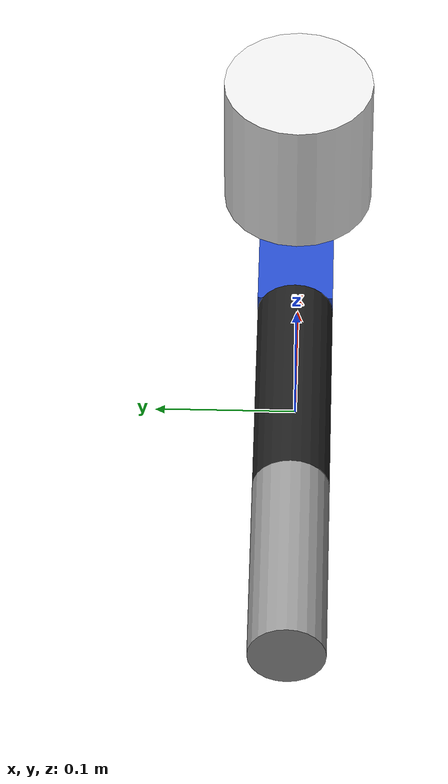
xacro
<?xml version="1.0"?>
<robot name="labrob" xmlns:xacro="http://www.ros.org/wiki/xacro">
  <!-- Included URDF/XACRO Files -->
  <xacro:include filename="$(find priovr_description)/urdf/materials.urdf.xacro" />

  <!-- PROPERTY LIST -->
  <!--All units in m-kg-s-radians unit system -->
  <property name="M_PI" value="3.1415926535897931" />
  <property name="M_PI_2" value="1.570796327" />
  <property name="DEG_TO_RAD" value="0.017453293" />

  <!-- Main Body-base -->
  <property name="depth" value="0.05" />
  <property name="hips_length" value="0.086" />
  <property name="hips_width" value="0.099" />
  <property name="spine_length" value="0.172" />
  <property name="shoulder_width" value="0.198" />
  <property name="neck_length" value="0.103" />
  <property name="head_size" value="0.05" />
  <property name="upper_arm_length" value="0.159" />
  <property name="arm_radius" value="0.025" />
  <property name="trunk_length" value="0.258" />
  <property name="lower_arm_length" value="0.143" />

  <link name="world"/>

  <link name="hips_dummy"/>

  <link name="head_dummy"/>
  <link name="head_dummy_2"/>

  <link name="r_upper_arm_dummy"/>
  <link name="r_upper_arm_dummy_2"/>

  <link name="r_lower_arm_dummy"/>
  <link name="r_lower_arm_dummy_2"/>

  <link name="hips">
    <visual>
      <origin xyz="0 0 0" rpy="0 0 0" />
      <geometry>
        <box size="${hips_width} ${depth} ${hips_length}"/>
      </geometry>
      <material name="Yellow" />
    </visual>
  </link>

  <link name="spine">
    <visual>
      <origin xyz="0 0 0" rpy="0 0 0" />
      <geometry>
        <box size="${shoulder_width} ${depth} ${spine_length}"/>
      </geometry>
      <material name="Blue" />
    </visual>
  </link>

  <link name="head">
    <visual>
      <origin xyz="0 0 0" rpy="0 0 0" />
      <geometry>
        <cylinder length="${neck_length}" radius="${head_size}"/>
      </geometry>
      <material name="White" />
    </visual>
  </link>

  <link name="r_upper_arm">
    <visual>
      <origin xyz="0 0 ${-upper_arm_length/2}" rpy="0 0 0" />
      <geometry>
        <cylinder length="${upper_arm_length}" radius="${arm_radius}"/>
      </geometry>
      <material name="Black" />
    </visual>
  </link>

  <link name="r_lower_arm">
    <visual>
      <origin xyz="0 0 ${-lower_arm_length/2}" rpy="0 0 0" />
      <geometry>
        <cylinder length="${lower_arm_length}" radius="${arm_radius}"/>
      </geometry>
      <material name="Gray" />
    </visual>
  </link>

  <joint name="hips_p" type="continuous">
    <origin xyz="0 0 0" rpy="0 0 0" />
    <parent link="world"/>
    <child link="hips" />
    <axis xyz="0 1 0" rpy="0 0 0" />
  </joint>

  <joint name="hips_r" type="continuous">
    <origin xyz="0 0 0" rpy="0 0 0" />
    <parent link="hips"/>
    <child link="hips_dummy" />
    <axis xyz="1 0 0" rpy="0 0 0" />
  </joint>

  <joint name="hips_y" type="continuous">
    <origin xyz="0 0 ${hips_length/2 + spine_length/2}" rpy="0 0 0" />
    <parent link="hips_dummy"/>
    <child link="spine" />
    <axis xyz="0 0 1" rpy="0 0 0" />
  </joint>

  <joint name="head_p" type="continuous">
    <origin xyz="0 0 ${spine_length/2+neck_length/2}" rpy="0 0 ${M_PI_2}" />
    <parent link="spine"/>
    <child link="head_dummy" />
    <axis xyz="0 1 0" rpy="0 0 0" />
  </joint>

  <joint name="head_r" type="continuous">
    <origin xyz="0 0 0" rpy="0 0 0" />
    <parent link="head_dummy"/>
    <child link="head_dummy_2" />
    <axis xyz="1 0 0" rpy="0 0 0" />
  </joint>

  <joint name="head_y" type="continuous">
    <origin xyz="0 0 0" rpy="0 0 0" />
    <parent link="head_dummy_2"/>
    <child link="head" />
    <axis xyz="0 0 1" rpy="0 0 0" />
  </joint>

  <joint name="r_upper_arm_r" type="continuous">
    <origin xyz="${-shoulder_width/2} 0 ${spine_length/2-arm_radius/2}" rpy="0 ${M_PI_2} 0" />
    <parent link="spine"/>
    <child link="r_upper_arm_dummy" />
    <axis xyz="-1 0 0" rpy="0 0 0" />
  </joint>

  <joint name="r_upper_arm_p" type="continuous">
    <origin xyz="0 0 0" rpy="0 0 0" />
    <parent link="r_upper_arm_dummy"/>
    <child link="r_upper_arm_dummy_2" />
    <axis xyz="0 1 0" rpy="0 0 0" />
  </joint>

  <joint name="r_upper_arm_y" type="continuous">
    <origin xyz="0 0 0" rpy="0 0 0" />
    <parent link="r_upper_arm_dummy_2"/>
    <child link="r_upper_arm" />
    <axis xyz="0 0 -1" rpy="0 0 0" />
  </joint>

  <joint name="r_lower_arm_r" type="continuous">
    <origin xyz="0 0 ${-upper_arm_length}" rpy="0 0 0" />
    <parent link="r_upper_arm"/>
    <child link="r_lower_arm_dummy" />
    <axis xyz="-1 0 0" rpy="0 0 0" />
  </joint>

  <joint name="r_lower_arm_p" type="continuous">
    <origin xyz="0 0 0" rpy="0 0 0" />
    <parent link="r_lower_arm_dummy"/>
    <child link="r_lower_arm_dummy_2" />
    <axis xyz="0 1 0" rpy="0 0 0" />
  </joint>

  <joint name="r_lower_arm_y" type="continuous">
    <origin xyz="0 0 0" rpy="0 0 0" />
    <parent link="r_lower_arm_dummy_2"/>
    <child link="r_lower_arm" />
    <axis xyz="0 0 -1" rpy="0 0 0" />
  </joint>

</robot>
